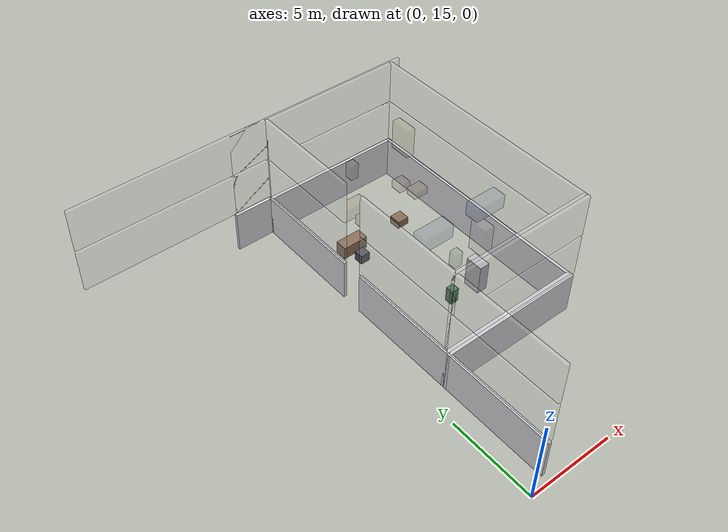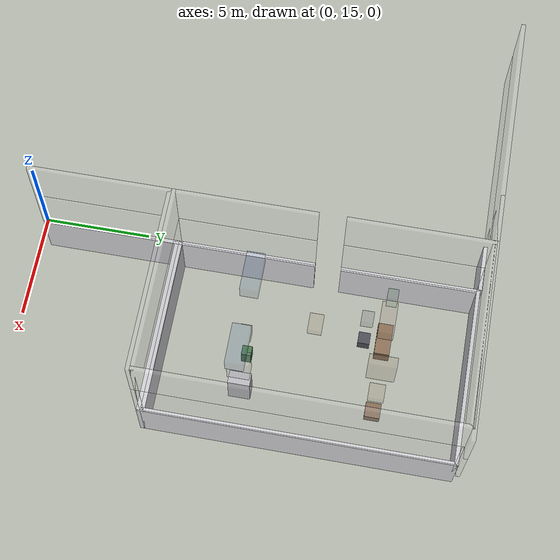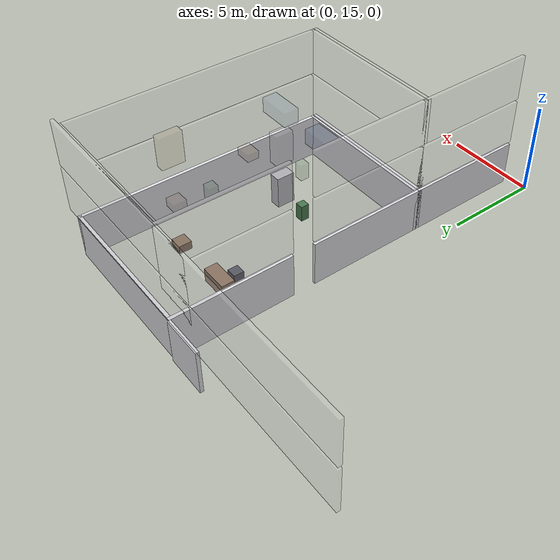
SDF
<sdf version="1.7">
 <model name="generated_building">
  <static>true</static>
  <link name="north_end_wall_floor_0">
   <pose>0.0000 35.9100 1.2250 0.0000 0.0000 0.0000</pose>
   <collision name="north_end_wall_floor_0_collision">
    <geometry><box><size>2.2000 0.1800 2.4500</size></box></geometry>
   </collision>
   <visual name="north_end_wall_floor_0_visual">
    <geometry><box><size>2.2000 0.1800 2.4500</size></box></geometry>
    <material><ambient>0.86 0.86 0.88 1</ambient><diffuse>0.86 0.86 0.88 1</diffuse></material>
   </visual>
   <gravity>false</gravity>
  </link>
  <link name="floor_0_room_1_corridor_wall_upper">
   <pose>1.1900 18.6725 1.2250 0.0000 0.0000 0.0000</pose>
   <collision name="floor_0_room_1_corridor_wall_upper_collision">
    <geometry><box><size>0.1800 6.4150 2.4500</size></box></geometry>
   </collision>
   <visual name="floor_0_room_1_corridor_wall_upper_visual">
    <geometry><box><size>0.1800 6.4150 2.4500</size></box></geometry>
    <material><ambient>0.86 0.86 0.88 1</ambient><diffuse>0.86 0.86 0.88 1</diffuse></material>
   </visual>
   <gravity>false</gravity>
  </link>
  <link name="floor_0_room_1_north_wall">
   <pose>5.3000 21.7900 1.2250 0.0000 0.0000 0.0000</pose>
   <collision name="floor_0_room_1_north_wall_collision">
    <geometry><box><size>8.4000 0.1800 2.4500</size></box></geometry>
   </collision>
   <visual name="floor_0_room_1_north_wall_visual">
    <geometry><box><size>8.4000 0.1800 2.4500</size></box></geometry>
    <material><ambient>0.86 0.86 0.88 1</ambient><diffuse>0.86 0.86 0.88 1</diffuse></material>
   </visual>
   <gravity>false</gravity>
  </link>
  <link name="floor_0_room_3_corridor_wall_lower">
   <pose>1.1900 25.0875 1.2250 0.0000 0.0000 0.0000</pose>
   <collision name="floor_0_room_3_corridor_wall_lower_collision">
    <geometry><box><size>0.1800 6.4150 2.4500</size></box></geometry>
   </collision>
   <visual name="floor_0_room_3_corridor_wall_lower_visual">
    <geometry><box><size>0.1800 6.4150 2.4500</size></box></geometry>
    <material><ambient>0.86 0.86 0.88 1</ambient><diffuse>0.86 0.86 0.88 1</diffuse></material>
   </visual>
   <gravity>false</gravity>
  </link>
  <link name="floor_0_room_3_corridor_wall_upper">
   <pose>1.1900 32.7025 1.2250 0.0000 0.0000 0.0000</pose>
   <collision name="floor_0_room_3_corridor_wall_upper_collision">
    <geometry><box><size>0.1800 6.4150 2.4500</size></box></geometry>
   </collision>
   <visual name="floor_0_room_3_corridor_wall_upper_visual">
    <geometry><box><size>0.1800 6.4150 2.4500</size></box></geometry>
    <material><ambient>0.86 0.86 0.88 1</ambient><diffuse>0.86 0.86 0.88 1</diffuse></material>
   </visual>
   <gravity>false</gravity>
  </link>
  <link name="floor_0_room_3_east_wall">
   <pose>9.4100 28.8950 1.2250 0.0000 0.0000 0.0000</pose>
   <collision name="floor_0_room_3_east_wall_collision">
    <geometry><box><size>0.1800 14.0300 2.4500</size></box></geometry>
   </collision>
   <visual name="floor_0_room_3_east_wall_visual">
    <geometry><box><size>0.1800 14.0300 2.4500</size></box></geometry>
    <material><ambient>0.86 0.86 0.88 1</ambient><diffuse>0.86 0.86 0.88 1</diffuse></material>
   </visual>
   <gravity>false</gravity>
  </link>
  <link name="floor_0_room_3_south_wall">
   <pose>5.3000 21.9700 1.2250 0.0000 0.0000 0.0000</pose>
   <collision name="floor_0_room_3_south_wall_collision">
    <geometry><box><size>8.4000 0.1800 2.4500</size></box></geometry>
   </collision>
   <visual name="floor_0_room_3_south_wall_visual">
    <geometry><box><size>8.4000 0.1800 2.4500</size></box></geometry>
    <material><ambient>0.86 0.86 0.88 1</ambient><diffuse>0.86 0.86 0.88 1</diffuse></material>
   </visual>
   <gravity>false</gravity>
  </link>
  <link name="floor_0_room_3_north_wall">
   <pose>5.3000 35.8200 1.2250 0.0000 0.0000 0.0000</pose>
   <collision name="floor_0_room_3_north_wall_collision">
    <geometry><box><size>8.4000 0.1800 2.4500</size></box></geometry>
   </collision>
   <visual name="floor_0_room_3_north_wall_visual">
    <geometry><box><size>8.4000 0.1800 2.4500</size></box></geometry>
    <material><ambient>0.86 0.86 0.88 1</ambient><diffuse>0.86 0.86 0.88 1</diffuse></material>
   </visual>
   <gravity>false</gravity>
  </link>
  <link name="floor_0_room_3_desk">
   <pose>3.6000 31.9525 0.4500 0.0000 0.0000 0.0000</pose>
   <collision name="floor_0_room_3_desk_collision">
    <geometry><box><size>1.5000 0.7000 0.7500</size></box></geometry>
   </collision>
   <visual name="floor_0_room_3_desk_visual">
    <geometry><box><size>1.5000 0.7000 0.7500</size></box></geometry>
    <material><ambient>0.54 0.43 0.34 1</ambient><diffuse>0.54 0.43 0.34 1</diffuse></material>
   </visual>
   <gravity>false</gravity>
  </link>
  <link name="floor_0_room_3_chair">
   <pose>3.6000 31.0525 0.2800 0.0000 0.0000 0.0000</pose>
   <collision name="floor_0_room_3_chair_collision">
    <geometry><box><size>0.5500 0.5500 0.5500</size></box></geometry>
   </collision>
   <visual name="floor_0_room_3_chair_visual">
    <geometry><box><size>0.5500 0.5500 0.5500</size></box></geometry>
    <material><ambient>0.30 0.30 0.34 1</ambient><diffuse>0.30 0.30 0.34 1</diffuse></material>
   </visual>
   <gravity>false</gravity>
  </link>
  <link name="floor_0_room_3_cabinet">
   <pose>7.0000 25.8375 0.9000 0.0000 0.0000 0.0000</pose>
   <collision name="floor_0_room_3_cabinet_collision">
    <geometry><box><size>0.6000 1.0000 1.8000</size></box></geometry>
   </collision>
   <visual name="floor_0_room_3_cabinet_visual">
    <geometry><box><size>0.6000 1.0000 1.8000</size></box></geometry>
    <material><ambient>0.72 0.72 0.74 1</ambient><diffuse>0.72 0.72 0.74 1</diffuse></material>
   </visual>
   <gravity>false</gravity>
  </link>
  <link name="floor_0_room_3_side_table">
   <pose>7.0000 31.9525 0.3200 0.0000 0.0000 0.0000</pose>
   <collision name="floor_0_room_3_side_table_collision">
    <geometry><box><size>0.7000 0.7000 0.4500</size></box></geometry>
   </collision>
   <visual name="floor_0_room_3_side_table_visual">
    <geometry><box><size>0.7000 0.7000 0.4500</size></box></geometry>
    <material><ambient>0.52 0.42 0.33 1</ambient><diffuse>0.52 0.42 0.33 1</diffuse></material>
   </visual>
   <gravity>false</gravity>
  </link>
  <link name="floor_0_room_3_planter">
   <pose>5.3000 25.8375 0.4500 0.0000 0.0000 0.0000</pose>
   <collision name="floor_0_room_3_planter_collision">
    <geometry><box><size>0.4500 0.4500 0.9000</size></box></geometry>
   </collision>
   <visual name="floor_0_room_3_planter_visual">
    <geometry><box><size>0.4500 0.4500 0.9000</size></box></geometry>
    <material><ambient>0.28 0.46 0.30 1</ambient><diffuse>0.28 0.46 0.30 1</diffuse></material>
   </visual>
   <gravity>false</gravity>
  </link>
  <link name="exterior_north_floor_1">
   <pose>0.0000 35.9100 3.8250 0.0000 0.0000 0.0000</pose>
   <collision name="exterior_north_floor_1_collision">
    <geometry><box><size>20.0000 0.1800 2.4500</size></box></geometry>
   </collision>
   <visual name="exterior_north_floor_1_visual">
    <geometry><box><size>20.0000 0.1800 2.4500</size></box></geometry>
    <material><ambient>0.86 0.86 0.88 1</ambient><diffuse>0.86 0.86 0.88 1</diffuse></material>
    <transparency>0.80</transparency>
   </visual>
   <gravity>false</gravity>
  </link>
  <link name="north_end_wall_floor_1">
   <pose>0.0000 35.9100 3.8250 0.0000 0.0000 0.0000</pose>
   <collision name="north_end_wall_floor_1_collision">
    <geometry><box><size>2.2000 0.1800 2.4500</size></box></geometry>
   </collision>
   <visual name="north_end_wall_floor_1_visual">
    <geometry><box><size>2.2000 0.1800 2.4500</size></box></geometry>
    <material><ambient>0.86 0.86 0.88 1</ambient><diffuse>0.86 0.86 0.88 1</diffuse></material>
    <transparency>0.80</transparency>
   </visual>
   <gravity>false</gravity>
  </link>
  <link name="floor_1_room_1_corridor_wall_upper">
   <pose>1.1900 18.6725 3.8250 0.0000 0.0000 0.0000</pose>
   <collision name="floor_1_room_1_corridor_wall_upper_collision">
    <geometry><box><size>0.1800 6.4150 2.4500</size></box></geometry>
   </collision>
   <visual name="floor_1_room_1_corridor_wall_upper_visual">
    <geometry><box><size>0.1800 6.4150 2.4500</size></box></geometry>
    <material><ambient>0.86 0.86 0.88 1</ambient><diffuse>0.86 0.86 0.88 1</diffuse></material>
    <transparency>0.80</transparency>
   </visual>
   <gravity>false</gravity>
  </link>
  <link name="floor_1_room_1_north_wall">
   <pose>5.3000 21.7900 3.8250 0.0000 0.0000 0.0000</pose>
   <collision name="floor_1_room_1_north_wall_collision">
    <geometry><box><size>8.4000 0.1800 2.4500</size></box></geometry>
   </collision>
   <visual name="floor_1_room_1_north_wall_visual">
    <geometry><box><size>8.4000 0.1800 2.4500</size></box></geometry>
    <material><ambient>0.86 0.86 0.88 1</ambient><diffuse>0.86 0.86 0.88 1</diffuse></material>
    <transparency>0.80</transparency>
   </visual>
   <gravity>false</gravity>
  </link>
  <link name="floor_1_room_3_corridor_wall_lower">
   <pose>1.1900 25.0875 3.8250 0.0000 0.0000 0.0000</pose>
   <collision name="floor_1_room_3_corridor_wall_lower_collision">
    <geometry><box><size>0.1800 6.4150 2.4500</size></box></geometry>
   </collision>
   <visual name="floor_1_room_3_corridor_wall_lower_visual">
    <geometry><box><size>0.1800 6.4150 2.4500</size></box></geometry>
    <material><ambient>0.86 0.86 0.88 1</ambient><diffuse>0.86 0.86 0.88 1</diffuse></material>
    <transparency>0.80</transparency>
   </visual>
   <gravity>false</gravity>
  </link>
  <link name="floor_1_room_3_corridor_wall_upper">
   <pose>1.1900 32.7025 3.8250 0.0000 0.0000 0.0000</pose>
   <collision name="floor_1_room_3_corridor_wall_upper_collision">
    <geometry><box><size>0.1800 6.4150 2.4500</size></box></geometry>
   </collision>
   <visual name="floor_1_room_3_corridor_wall_upper_visual">
    <geometry><box><size>0.1800 6.4150 2.4500</size></box></geometry>
    <material><ambient>0.86 0.86 0.88 1</ambient><diffuse>0.86 0.86 0.88 1</diffuse></material>
    <transparency>0.80</transparency>
   </visual>
   <gravity>false</gravity>
  </link>
  <link name="floor_1_room_3_east_wall">
   <pose>9.4100 28.8950 3.8250 0.0000 0.0000 0.0000</pose>
   <collision name="floor_1_room_3_east_wall_collision">
    <geometry><box><size>0.1800 14.0300 2.4500</size></box></geometry>
   </collision>
   <visual name="floor_1_room_3_east_wall_visual">
    <geometry><box><size>0.1800 14.0300 2.4500</size></box></geometry>
    <material><ambient>0.86 0.86 0.88 1</ambient><diffuse>0.86 0.86 0.88 1</diffuse></material>
    <transparency>0.80</transparency>
   </visual>
   <gravity>false</gravity>
  </link>
  <link name="floor_1_room_3_south_wall">
   <pose>5.3000 21.9700 3.8250 0.0000 0.0000 0.0000</pose>
   <collision name="floor_1_room_3_south_wall_collision">
    <geometry><box><size>8.4000 0.1800 2.4500</size></box></geometry>
   </collision>
   <visual name="floor_1_room_3_south_wall_visual">
    <geometry><box><size>8.4000 0.1800 2.4500</size></box></geometry>
    <material><ambient>0.86 0.86 0.88 1</ambient><diffuse>0.86 0.86 0.88 1</diffuse></material>
    <transparency>0.80</transparency>
   </visual>
   <gravity>false</gravity>
  </link>
  <link name="floor_1_room_3_north_wall">
   <pose>5.3000 35.8200 3.8250 0.0000 0.0000 0.0000</pose>
   <collision name="floor_1_room_3_north_wall_collision">
    <geometry><box><size>8.4000 0.1800 2.4500</size></box></geometry>
   </collision>
   <visual name="floor_1_room_3_north_wall_visual">
    <geometry><box><size>8.4000 0.1800 2.4500</size></box></geometry>
    <material><ambient>0.86 0.86 0.88 1</ambient><diffuse>0.86 0.86 0.88 1</diffuse></material>
    <transparency>0.80</transparency>
   </visual>
   <gravity>false</gravity>
  </link>
  <link name="floor_1_room_3_desk">
   <pose>3.6000 31.9525 3.0500 0.0000 0.0000 0.0000</pose>
   <collision name="floor_1_room_3_desk_collision">
    <geometry><box><size>1.5000 0.7000 0.7500</size></box></geometry>
   </collision>
   <visual name="floor_1_room_3_desk_visual">
    <geometry><box><size>1.5000 0.7000 0.7500</size></box></geometry>
    <material><ambient>0.54 0.43 0.34 1</ambient><diffuse>0.54 0.43 0.34 1</diffuse></material>
    <transparency>0.80</transparency>
   </visual>
   <gravity>false</gravity>
  </link>
  <link name="floor_1_room_3_chair">
   <pose>3.6000 31.0525 2.8800 0.0000 0.0000 0.0000</pose>
   <collision name="floor_1_room_3_chair_collision">
    <geometry><box><size>0.5500 0.5500 0.5500</size></box></geometry>
   </collision>
   <visual name="floor_1_room_3_chair_visual">
    <geometry><box><size>0.5500 0.5500 0.5500</size></box></geometry>
    <material><ambient>0.30 0.30 0.34 1</ambient><diffuse>0.30 0.30 0.34 1</diffuse></material>
    <transparency>0.80</transparency>
   </visual>
   <gravity>false</gravity>
  </link>
  <link name="floor_1_room_3_cabinet">
   <pose>7.0000 25.8375 3.5000 0.0000 0.0000 0.0000</pose>
   <collision name="floor_1_room_3_cabinet_collision">
    <geometry><box><size>0.6000 1.0000 1.8000</size></box></geometry>
   </collision>
   <visual name="floor_1_room_3_cabinet_visual">
    <geometry><box><size>0.6000 1.0000 1.8000</size></box></geometry>
    <material><ambient>0.72 0.72 0.74 1</ambient><diffuse>0.72 0.72 0.74 1</diffuse></material>
    <transparency>0.80</transparency>
   </visual>
   <gravity>false</gravity>
  </link>
  <link name="floor_1_room_3_side_table">
   <pose>7.0000 31.9525 2.9200 0.0000 0.0000 0.0000</pose>
   <collision name="floor_1_room_3_side_table_collision">
    <geometry><box><size>0.7000 0.7000 0.4500</size></box></geometry>
   </collision>
   <visual name="floor_1_room_3_side_table_visual">
    <geometry><box><size>0.7000 0.7000 0.4500</size></box></geometry>
    <material><ambient>0.52 0.42 0.33 1</ambient><diffuse>0.52 0.42 0.33 1</diffuse></material>
    <transparency>0.80</transparency>
   </visual>
   <gravity>false</gravity>
  </link>
  <link name="floor_1_room_3_planter">
   <pose>5.3000 25.8375 3.0500 0.0000 0.0000 0.0000</pose>
   <collision name="floor_1_room_3_planter_collision">
    <geometry><box><size>0.4500 0.4500 0.9000</size></box></geometry>
   </collision>
   <visual name="floor_1_room_3_planter_visual">
    <geometry><box><size>0.4500 0.4500 0.9000</size></box></geometry>
    <material><ambient>0.28 0.46 0.30 1</ambient><diffuse>0.28 0.46 0.30 1</diffuse></material>
    <transparency>0.80</transparency>
   </visual>
   <gravity>false</gravity>
  </link>
  <link name="exterior_north_floor_2">
   <pose>0.0000 35.9100 6.4250 0.0000 0.0000 0.0000</pose>
   <collision name="exterior_north_floor_2_collision">
    <geometry><box><size>20.0000 0.1800 2.4500</size></box></geometry>
   </collision>
   <visual name="exterior_north_floor_2_visual">
    <geometry><box><size>20.0000 0.1800 2.4500</size></box></geometry>
    <material><ambient>0.86 0.86 0.88 1</ambient><diffuse>0.86 0.86 0.88 1</diffuse></material>
    <transparency>0.80</transparency>
   </visual>
   <gravity>false</gravity>
  </link>
  <link name="north_end_wall_floor_2">
   <pose>0.0000 35.9100 6.4250 0.0000 0.0000 0.0000</pose>
   <collision name="north_end_wall_floor_2_collision">
    <geometry><box><size>2.2000 0.1800 2.4500</size></box></geometry>
   </collision>
   <visual name="north_end_wall_floor_2_visual">
    <geometry><box><size>2.2000 0.1800 2.4500</size></box></geometry>
    <material><ambient>0.86 0.86 0.88 1</ambient><diffuse>0.86 0.86 0.88 1</diffuse></material>
    <transparency>0.80</transparency>
   </visual>
   <gravity>false</gravity>
  </link>
  <link name="floor_2_room_1_corridor_wall_upper">
   <pose>1.1900 18.6725 6.4250 0.0000 0.0000 0.0000</pose>
   <collision name="floor_2_room_1_corridor_wall_upper_collision">
    <geometry><box><size>0.1800 6.4150 2.4500</size></box></geometry>
   </collision>
   <visual name="floor_2_room_1_corridor_wall_upper_visual">
    <geometry><box><size>0.1800 6.4150 2.4500</size></box></geometry>
    <material><ambient>0.86 0.86 0.88 1</ambient><diffuse>0.86 0.86 0.88 1</diffuse></material>
    <transparency>0.80</transparency>
   </visual>
   <gravity>false</gravity>
  </link>
  <link name="floor_2_room_1_north_wall">
   <pose>5.3000 21.7900 6.4250 0.0000 0.0000 0.0000</pose>
   <collision name="floor_2_room_1_north_wall_collision">
    <geometry><box><size>8.4000 0.1800 2.4500</size></box></geometry>
   </collision>
   <visual name="floor_2_room_1_north_wall_visual">
    <geometry><box><size>8.4000 0.1800 2.4500</size></box></geometry>
    <material><ambient>0.86 0.86 0.88 1</ambient><diffuse>0.86 0.86 0.88 1</diffuse></material>
    <transparency>0.80</transparency>
   </visual>
   <gravity>false</gravity>
  </link>
  <link name="floor_2_room_3_corridor_wall_lower">
   <pose>1.1900 25.0875 6.4250 0.0000 0.0000 0.0000</pose>
   <collision name="floor_2_room_3_corridor_wall_lower_collision">
    <geometry><box><size>0.1800 6.4150 2.4500</size></box></geometry>
   </collision>
   <visual name="floor_2_room_3_corridor_wall_lower_visual">
    <geometry><box><size>0.1800 6.4150 2.4500</size></box></geometry>
    <material><ambient>0.86 0.86 0.88 1</ambient><diffuse>0.86 0.86 0.88 1</diffuse></material>
    <transparency>0.80</transparency>
   </visual>
   <gravity>false</gravity>
  </link>
  <link name="floor_2_room_3_corridor_wall_upper">
   <pose>1.1900 32.7025 6.4250 0.0000 0.0000 0.0000</pose>
   <collision name="floor_2_room_3_corridor_wall_upper_collision">
    <geometry><box><size>0.1800 6.4150 2.4500</size></box></geometry>
   </collision>
   <visual name="floor_2_room_3_corridor_wall_upper_visual">
    <geometry><box><size>0.1800 6.4150 2.4500</size></box></geometry>
    <material><ambient>0.86 0.86 0.88 1</ambient><diffuse>0.86 0.86 0.88 1</diffuse></material>
    <transparency>0.80</transparency>
   </visual>
   <gravity>false</gravity>
  </link>
  <link name="floor_2_room_3_east_wall">
   <pose>9.4100 28.8950 6.4250 0.0000 0.0000 0.0000</pose>
   <collision name="floor_2_room_3_east_wall_collision">
    <geometry><box><size>0.1800 14.0300 2.4500</size></box></geometry>
   </collision>
   <visual name="floor_2_room_3_east_wall_visual">
    <geometry><box><size>0.1800 14.0300 2.4500</size></box></geometry>
    <material><ambient>0.86 0.86 0.88 1</ambient><diffuse>0.86 0.86 0.88 1</diffuse></material>
    <transparency>0.80</transparency>
   </visual>
   <gravity>false</gravity>
  </link>
  <link name="floor_2_room_3_south_wall">
   <pose>5.3000 21.9700 6.4250 0.0000 0.0000 0.0000</pose>
   <collision name="floor_2_room_3_south_wall_collision">
    <geometry><box><size>8.4000 0.1800 2.4500</size></box></geometry>
   </collision>
   <visual name="floor_2_room_3_south_wall_visual">
    <geometry><box><size>8.4000 0.1800 2.4500</size></box></geometry>
    <material><ambient>0.86 0.86 0.88 1</ambient><diffuse>0.86 0.86 0.88 1</diffuse></material>
    <transparency>0.80</transparency>
   </visual>
   <gravity>false</gravity>
  </link>
  <link name="floor_2_room_3_north_wall">
   <pose>5.3000 35.8200 6.4250 0.0000 0.0000 0.0000</pose>
   <collision name="floor_2_room_3_north_wall_collision">
    <geometry><box><size>8.4000 0.1800 2.4500</size></box></geometry>
   </collision>
   <visual name="floor_2_room_3_north_wall_visual">
    <geometry><box><size>8.4000 0.1800 2.4500</size></box></geometry>
    <material><ambient>0.86 0.86 0.88 1</ambient><diffuse>0.86 0.86 0.88 1</diffuse></material>
    <transparency>0.80</transparency>
   </visual>
   <gravity>false</gravity>
  </link>
  <link name="floor_2_room_3_sofa_a">
   <pose>3.6000 25.8375 5.6500 0.0000 0.0000 0.0000</pose>
   <collision name="floor_2_room_3_sofa_a_collision">
    <geometry><box><size>1.8000 0.8000 0.8000</size></box></geometry>
   </collision>
   <visual name="floor_2_room_3_sofa_a_visual">
    <geometry><box><size>1.8000 0.8000 0.8000</size></box></geometry>
    <material><ambient>0.24 0.36 0.54 1</ambient><diffuse>0.24 0.36 0.54 1</diffuse></material>
    <transparency>0.80</transparency>
   </visual>
   <gravity>false</gravity>
  </link>
  <link name="floor_2_room_3_sofa_b">
   <pose>7.0000 25.8375 5.6500 0.0000 0.0000 3.1400</pose>
   <collision name="floor_2_room_3_sofa_b_collision">
    <geometry><box><size>1.8000 0.8000 0.8000</size></box></geometry>
   </collision>
   <visual name="floor_2_room_3_sofa_b_visual">
    <geometry><box><size>1.8000 0.8000 0.8000</size></box></geometry>
    <material><ambient>0.24 0.36 0.54 1</ambient><diffuse>0.24 0.36 0.54 1</diffuse></material>
    <transparency>0.80</transparency>
   </visual>
   <gravity>false</gravity>
  </link>
  <link name="floor_2_room_3_coffee_table">
   <pose>5.3000 28.8950 5.4500 0.0000 0.0000 0.0000</pose>
   <collision name="floor_2_room_3_coffee_table_collision">
    <geometry><box><size>0.8000 0.6000 0.4000</size></box></geometry>
   </collision>
   <visual name="floor_2_room_3_coffee_table_visual">
    <geometry><box><size>0.8000 0.6000 0.4000</size></box></geometry>
    <material><ambient>0.60 0.48 0.34 1</ambient><diffuse>0.60 0.48 0.34 1</diffuse></material>
    <transparency>0.80</transparency>
   </visual>
   <gravity>false</gravity>
  </link>
  <link name="floor_2_room_3_bookshelf">
   <pose>7.0000 31.9525 6.0500 0.0000 0.0000 0.0000</pose>
   <collision name="floor_2_room_3_bookshelf_collision">
    <geometry><box><size>0.4500 1.2000 1.7000</size></box></geometry>
   </collision>
   <visual name="floor_2_room_3_bookshelf_visual">
    <geometry><box><size>0.4500 1.2000 1.7000</size></box></geometry>
    <material><ambient>0.50 0.40 0.30 1</ambient><diffuse>0.50 0.40 0.30 1</diffuse></material>
    <transparency>0.80</transparency>
   </visual>
   <gravity>false</gravity>
  </link>
  <link name="floor_2_room_3_planter">
   <pose>3.6000 31.9525 5.6500 0.0000 0.0000 0.0000</pose>
   <collision name="floor_2_room_3_planter_collision">
    <geometry><box><size>0.4500 0.4500 0.9000</size></box></geometry>
   </collision>
   <visual name="floor_2_room_3_planter_visual">
    <geometry><box><size>0.4500 0.4500 0.9000</size></box></geometry>
    <material><ambient>0.28 0.46 0.30 1</ambient><diffuse>0.28 0.46 0.30 1</diffuse></material>
    <transparency>0.80</transparency>
   </visual>
   <gravity>false</gravity>
  </link>
 </model>
</sdf>
